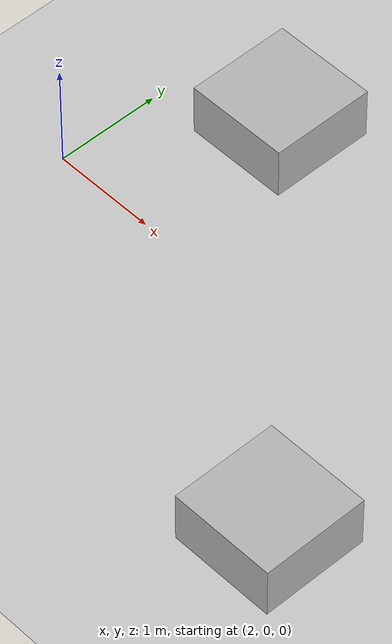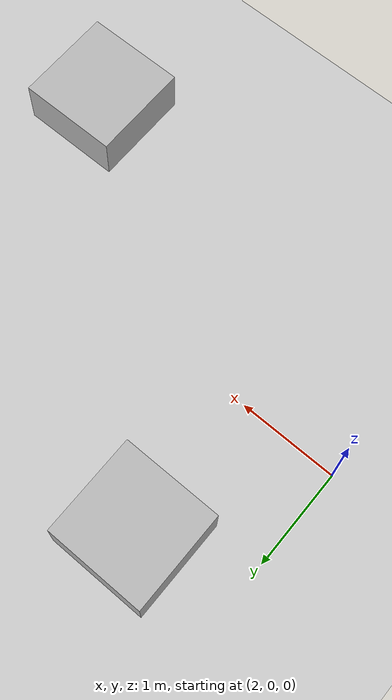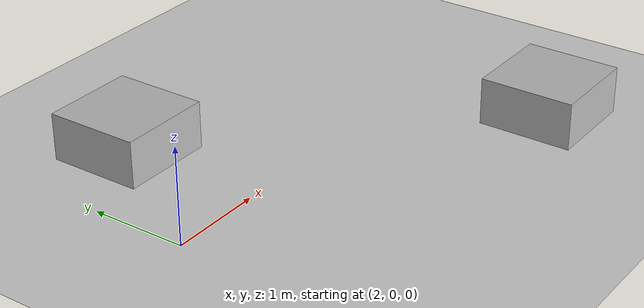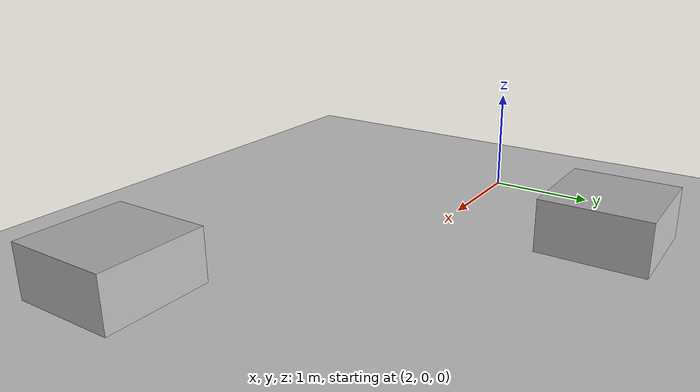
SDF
<?xml version="1.0" ?>
<sdf version="1.4">
  <!-- We use a custom world for the rrbot so that the camera angle is launched correctly -->

  <world name="default">

   <model name="box">
    <static>true</static>
    <pose> 6.0 -1.5 0.25 0.0 0.0 0.0 </pose>
    <link name="link">
    <inertial>
      <inertia>
      <ixx>1</ixx>
      <ixy>0</ixy>
      <ixz>0</ixz>
      <iyy>1</iyy>
      <iyz>0</iyz>
      <izz>1</izz>
      </inertia>
      <mass>1.0</mass>
    </inertial>
    <collision name="box_collision">
       <geometry>
          <box>
          <size> 1.0 1.0 0.5</size>
          </box>
       </geometry>
    </collision>
    <visual name="visual_collision">
       <geometry>
          <box>
          <size> 1.0 1.0 0.5</size>
          </box>
       </geometry>
    </visual>
    </link>
    <!--plugin name="move_box" filename="libmove_box.so"/-->
  </model>

  <model name="box1">
    <static>true</static>
    <pose> 3.0 1.5 0.25 0.0 0.0 0.0 </pose>
    <link name="link">
    <inertial>
      <inertia>
      <ixx>1</ixx>
      <ixy>0</ixy>
      <ixz>0</ixz>
      <iyy>1</iyy>
      <iyz>0</iyz>
      <izz>1</izz>
      </inertia>
      <mass>1.0</mass>
    </inertial>
    <collision name="box1_collision">
       <geometry>
          <box>
          <size> 1.0 1.0 0.5</size>
          </box>
       </geometry>
    </collision>
    <visual name="visual1_collision">
       <geometry>
          <box>
          <size> 1.0 1.0 0.5</size>
          </box>
       </geometry>
    </visual>
    </link>
  </model>

  <plugin name="xbot2_clock" filename="libxbot2_gz_clock.so"/>

  <gravity>0 0 -9.81</gravity>

  <model name="ground_plane">
    <static>true</static>
    <link name="link">
      <collision name="collision">
        <geometry>
          <plane>
            <normal>0 0 1</normal>
            <size>100 100</size>
          </plane>
        </geometry>
        <surface>
          <friction>
            <ode>
              <mu>1</mu>
              <mu2>1</mu2>
            </ode>
          </friction>
        </surface>
      </collision>
      <visual name="visual">
        <cast_shadows>false</cast_shadows>
        <geometry>
          <plane>
            <normal>0 0 1</normal>
            <size>100 100</size>
          </plane>
        </geometry>
        <material>
          <script>
            <uri>file://media/materials/scripts/gazebo.material</uri>
            <name>Gazebo/Grey</name>
          </script>
        </material>
      </visual>
    </link>
  </model>

    <!-- Global light source -->
    <include>
      <uri>model://sun</uri>
    </include>

    <!-- Focus camera on tall pendulum -->
    <gui fullscreen='0'>
      <camera name='user_camera'>
        <pose>4.927360 -4.376610 3.740080 0.000000 0.275643 2.356190</pose>
        <view_controller>orbit</view_controller>
      </camera>
    </gui>

    <physics name="update_rate" type="ode">
      <real_time_update_rate>4000</real_time_update_rate>
      <max_step_size>0.00025</max_step_size>
      <max_contacts>5</max_contacts>
      <bullet>
	<solver>
          <iters>100</iters>
          <sor>1.55</sor>
        </solver>
        <constraints>
          <contact_surface_layer>0.2</contact_surface_layer>
          <cfm>0.005</cfm>
          <erp>0.2</erp>
        </constraints>
      </bullet>
      <ode>
	<solver>
          <iters>50</iters>
          <sor>1.20</sor>
        </solver>
        <constraints>
          <contact_surface_layer>0.0002</contact_surface_layer>
          <contact_max_correcting_vel>500</contact_max_correcting_vel>
          <cfm>0.000001</cfm>
          <erp>0.3</erp>
        </constraints>
      </ode>
    </physics>

  </world>
</sdf>
